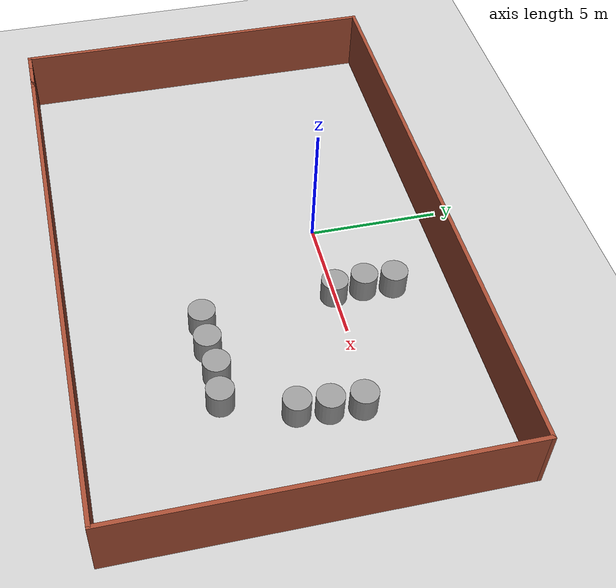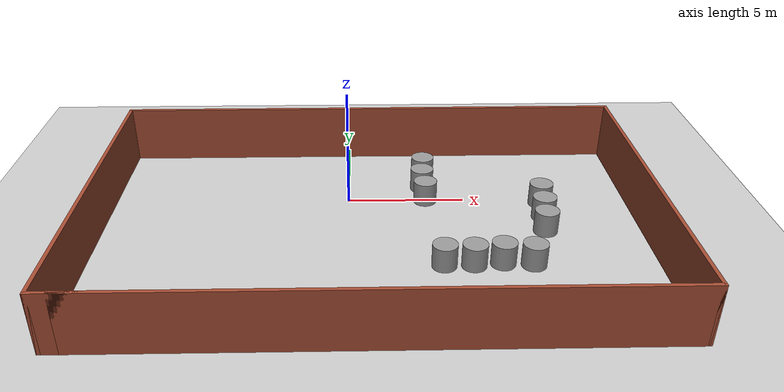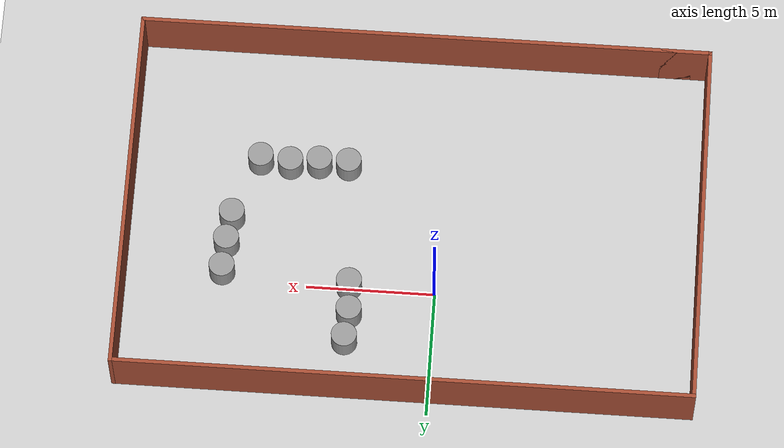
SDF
<sdf version="1.7">
 <world name="default">
  <light name="sun" type="directional">
   <pose>0 0 10 0 -0 0</pose>
   <diffuse>0.8 0.8 0.8 1</diffuse>
   <specular>0.2 0.2 0.2 1</specular>
   <attenuation>
    <range>1000</range>
    <constant>0.9</constant>
    <linear>0.01</linear>
    <quadratic>0.001</quadratic>
   </attenuation>
   <direction>-0.5 0.1 -0.9</direction>
   <spot><inner_angle>0</inner_angle><outer_angle>0</outer_angle><falloff>0</falloff></spot>
  </light>
  <model name="ground_plane">
   <static>1</static>
   <link name="link">
    <collision name="collision">
     <geometry><plane><normal>0 0 1</normal><size>100 100</size></plane></geometry>
     <surface>
      <contact><collide_bitmask>65535</collide_bitmask></contact>
      <friction><ode><mu>100</mu><mu2>50</mu2></ode></friction>
     </surface>
    </collision>
    <visual name="visual">
     <cast_shadows>0</cast_shadows>
     <geometry><plane><normal>0 0 1</normal><size>100 100</size></plane></geometry>
     <material>
      <script><uri>file://media/materials/scripts/gazebo.material</uri><name>Gazebo/Grey</name></script>
     </material>
    </visual>
   </link>
  </model>
  <gravity>0 0 -9.8</gravity>
  <magnetic_field>6e-06 2.3e-05 -4.2e-05</magnetic_field>
  <atmosphere type="adiabatic"/>
  <physics type="ode">
   <max_step_size>0.001</max_step_size>
   <real_time_factor>1</real_time_factor>
   <real_time_update_rate>1000</real_time_update_rate>
  </physics>
  <scene><ambient>0.4 0.4 0.4 1</ambient><background>0.7 0.7 0.7 1</background><shadows>1</shadows></scene>
  <spherical_coordinates>
   <surface_model>EARTH_WGS84</surface_model>
   <latitude_deg>0</latitude_deg>
   <longitude_deg>0</longitude_deg>
   <elevation>0</elevation>
   <heading_deg>0</heading_deg>
  </spherical_coordinates>
  <model name="Untitled">
   <pose>0.9792 -2.75676 0 0 -0 0</pose>
   <link name="Wall_2">
    <collision name="Wall_2_Collision">
     <geometry><box><size>21.75 0.15 2.5</size></box></geometry>
     <pose>0 0 1.25 0 -0 0</pose>
    </collision>
    <visual name="Wall_2_Visual">
     <pose>0 0 1.25 0 -0 0</pose>
     <geometry><box><size>21.75 0.15 2.5</size></box></geometry>
     <material>
      <script><uri>file://media/materials/scripts/gazebo.material</uri><name>Gazebo/Bricks</name></script>
      <ambient>0.447059 0.623529 0.811765 1</ambient>
     </material>
     <meta><layer>0</layer></meta>
    </visual>
    <pose>0.375 -7.175 0 0 -0 0</pose>
   </link>
   <link name="Wall_3">
    <collision name="Wall_3_Collision">
     <geometry><box><size>14.5 0.15 2.5</size></box></geometry>
     <pose>0 0 1.25 0 -0 0</pose>
    </collision>
    <visual name="Wall_3_Visual">
     <pose>0 0 1.25 0 -0 0</pose>
     <geometry><box><size>14.5 0.15 2.5</size></box></geometry>
     <material>
      <script><uri>file://media/materials/scripts/gazebo.material</uri><name>Gazebo/Bricks</name></script>
      <ambient>0.447059 0.623529 0.811765 1</ambient>
     </material>
     <meta><layer>0</layer></meta>
    </visual>
    <pose>11.175 0 0 0 -0 1.5708</pose>
   </link>
   <link name="Wall_4">
    <collision name="Wall_4_Collision">
     <geometry><box><size>22.5 0.15 2.5</size></box></geometry>
     <pose>0 0 1.25 0 -0 0</pose>
    </collision>
    <visual name="Wall_4_Visual">
     <pose>0 0 1.25 0 -0 0</pose>
     <geometry><box><size>22.5 0.15 2.5</size></box></geometry>
     <material>
      <script><uri>file://media/materials/scripts/gazebo.material</uri><name>Gazebo/Bricks</name></script>
      <ambient>0.447059 0.623529 0.811765 1</ambient>
     </material>
     <meta><layer>0</layer></meta>
    </visual>
    <pose>-0 7.175 0 0 -0 3.14159</pose>
   </link>
   <link name="Wall_5">
    <collision name="Wall_5_Collision">
     <geometry><box><size>14.5 0.15 2.5</size></box></geometry>
     <pose>0 0 1.25 0 -0 0</pose>
    </collision>
    <visual name="Wall_5_Visual">
     <pose>0 0 1.25 0 -0 0</pose>
     <geometry><box><size>14.5 0.15 2.5</size></box></geometry>
     <material>
      <script><uri>file://media/materials/scripts/gazebo.material</uri><name>Gazebo/Bricks</name></script>
      <ambient>0.447059 0.623529 0.811765 1</ambient>
     </material>
     <meta><layer>0</layer></meta>
    </visual>
    <pose>-11.175 0 0 0 -0 -1.5708</pose>
   </link>
   <link name="Wall_6">
    <collision name="Wall_6_Collision">
     <geometry><box><size>2 0.15 2.5</size></box></geometry>
     <pose>0 0 1.25 0 -0 0</pose>
    </collision>
    <visual name="Wall_6_Visual">
     <pose>0 0 1.25 0 -0 0</pose>
     <geometry><box><size>2 0.15 2.5</size></box></geometry>
     <material>
      <script><uri>file://media/materials/scripts/gazebo.material</uri><name>Gazebo/Bricks</name></script>
      <ambient>0.447059 0.623529 0.811765 1</ambient>
     </material>
     <meta><layer>0</layer></meta>
    </visual>
    <pose>-10.25 -7.175 0 0 -0 0</pose>
   </link>
   <static>1</static>
  </model>
  <model name="unit_cylinder">
   <link name="link">
    <inertial>
     <mass>1</mass>
     <inertia><ixx>0.145833</ixx><ixy>0</ixy><ixz>0</ixz><iyy>0.145833</iyy><iyz>0</iyz><izz>0.125</izz></inertia>
    </inertial>
    <visual name="visual">
     <geometry><cylinder><radius>0.5</radius><length>1</length></cylinder></geometry>
     <material>
      <script><name>Gazebo/Grey</name><uri>file://media/materials/scripts/gazebo.material</uri></script>
      <shader type="pixel"/>
     </material>
    </visual>
    <collision name="collision">
     <geometry><cylinder><radius>0.5</radius><length>1</length></cylinder></geometry>
     <surface>
      <friction>
       <ode><mu>1</mu><mu2>1</mu2><fdir1>0 0 0</fdir1><slip1>0</slip1><slip2>0</slip2></ode>
       <torsional>
        <coefficient>1</coefficient>
        <patch_radius>0</patch_radius>
        <surface_radius>0</surface_radius>
        <use_patch_radius>1</use_patch_radius>
        <ode><slip>0</slip></ode>
       </torsional>
      </friction>
      <bounce><restitution_coefficient>0</restitution_coefficient><threshold>1e+06</threshold></bounce>
      <contact>
       <collide_without_contact>0</collide_without_contact>
       <collide_without_contact_bitmask>1</collide_without_contact_bitmask>
       <collide_bitmask>1</collide_bitmask>
       <ode>
        <soft_cfm>0</soft_cfm>
        <soft_erp>0.2</soft_erp>
        <kp>1e+13</kp>
        <kd>1</kd>
        <max_vel>0.01</max_vel>
        <min_depth>0</min_depth>
       </ode>
       <bullet>
        <split_impulse>1</split_impulse>
        <split_impulse_penetration_threshold>-0.01</split_impulse_penetration_threshold>
        <soft_cfm>0</soft_cfm>
        <soft_erp>0.2</soft_erp>
        <kp>1e+13</kp>
        <kd>1</kd>
       </bullet>
      </contact>
     </surface>
    </collision>
   </link>
   <static>1</static>
   <pose>3.36949 2.22415 0.499993 -3e-06 -4e-06 -0</pose>
  </model>
  <model name="unit_cylinder_clone">
   <link name="link">
    <inertial>
     <mass>1</mass>
     <inertia><ixx>0.145833</ixx><ixy>0</ixy><ixz>0</ixz><iyy>0.145833</iyy><iyz>0</iyz><izz>0.125</izz></inertia>
    </inertial>
    <visual name="visual">
     <geometry><cylinder><radius>0.5</radius><length>1</length></cylinder></geometry>
     <material>
      <script><name>Gazebo/Grey</name><uri>file://media/materials/scripts/gazebo.material</uri></script>
      <shader type="pixel"/>
     </material>
    </visual>
    <collision name="collision">
     <geometry><cylinder><radius>0.5</radius><length>1</length></cylinder></geometry>
     <surface>
      <friction>
       <ode><mu>1</mu><mu2>1</mu2><fdir1>0 0 0</fdir1><slip1>0</slip1><slip2>0</slip2></ode>
       <torsional>
        <coefficient>1</coefficient>
        <patch_radius>0</patch_radius>
        <surface_radius>0</surface_radius>
        <use_patch_radius>1</use_patch_radius>
        <ode><slip>0</slip></ode>
       </torsional>
      </friction>
      <bounce><restitution_coefficient>0</restitution_coefficient><threshold>1e+06</threshold></bounce>
      <contact>
       <collide_without_contact>0</collide_without_contact>
       <collide_without_contact_bitmask>1</collide_without_contact_bitmask>
       <collide_bitmask>1</collide_bitmask>
       <ode>
        <soft_cfm>0</soft_cfm>
        <soft_erp>0.2</soft_erp>
        <kp>1e+13</kp>
        <kd>1</kd>
        <max_vel>0.01</max_vel>
        <min_depth>0</min_depth>
       </ode>
       <bullet>
        <split_impulse>1</split_impulse>
        <split_impulse_penetration_threshold>-0.01</split_impulse_penetration_threshold>
        <soft_cfm>0</soft_cfm>
        <soft_erp>0.2</soft_erp>
        <kp>1e+13</kp>
        <kd>1</kd>
       </bullet>
      </contact>
     </surface>
    </collision>
   </link>
   <static>1</static>
   <pose>3.26753 1.09729 0.499993 -3e-06 -4e-06 -0</pose>
  </model>
  <model name="unit_cylinder_clone_0">
   <link name="link">
    <inertial>
     <mass>1</mass>
     <inertia><ixx>0.145833</ixx><ixy>0</ixy><ixz>0</ixz><iyy>0.145833</iyy><iyz>0</iyz><izz>0.125</izz></inertia>
    </inertial>
    <visual name="visual">
     <geometry><cylinder><radius>0.5</radius><length>1</length></cylinder></geometry>
     <material>
      <script><name>Gazebo/Grey</name><uri>file://media/materials/scripts/gazebo.material</uri></script>
      <shader type="pixel"/>
     </material>
    </visual>
    <collision name="collision">
     <geometry><cylinder><radius>0.5</radius><length>1</length></cylinder></geometry>
     <surface>
      <friction>
       <ode><mu>1</mu><mu2>1</mu2><fdir1>0 0 0</fdir1><slip1>0</slip1><slip2>0</slip2></ode>
       <torsional>
        <coefficient>1</coefficient>
        <patch_radius>0</patch_radius>
        <surface_radius>0</surface_radius>
        <use_patch_radius>1</use_patch_radius>
        <ode><slip>0</slip></ode>
       </torsional>
      </friction>
      <bounce><restitution_coefficient>0</restitution_coefficient><threshold>1e+06</threshold></bounce>
      <contact>
       <collide_without_contact>0</collide_without_contact>
       <collide_without_contact_bitmask>1</collide_without_contact_bitmask>
       <collide_bitmask>1</collide_bitmask>
       <ode>
        <soft_cfm>0</soft_cfm>
        <soft_erp>0.2</soft_erp>
        <kp>1e+13</kp>
        <kd>1</kd>
        <max_vel>0.01</max_vel>
        <min_depth>0</min_depth>
       </ode>
       <bullet>
        <split_impulse>1</split_impulse>
        <split_impulse_penetration_threshold>-0.01</split_impulse_penetration_threshold>
        <soft_cfm>0</soft_cfm>
        <soft_erp>0.2</soft_erp>
        <kp>1e+13</kp>
        <kd>1</kd>
       </bullet>
      </contact>
     </surface>
    </collision>
   </link>
   <static>1</static>
   <pose>3.33616 -0.049378 0.499993 -3e-06 -4e-06 -0</pose>
  </model>
  <model name="unit_cylinder_clone_1">
   <link name="link">
    <inertial>
     <mass>1</mass>
     <inertia><ixx>0.145833</ixx><ixy>0</ixy><ixz>0</ixz><iyy>0.145833</iyy><iyz>0</iyz><izz>0.125</izz></inertia>
    </inertial>
    <visual name="visual">
     <geometry><cylinder><radius>0.5</radius><length>1</length></cylinder></geometry>
     <material>
      <script><name>Gazebo/Grey</name><uri>file://media/materials/scripts/gazebo.material</uri></script>
      <shader type="pixel"/>
     </material>
    </visual>
    <collision name="collision">
     <geometry><cylinder><radius>0.5</radius><length>1</length></cylinder></geometry>
     <surface>
      <friction>
       <ode><mu>1</mu><mu2>1</mu2><fdir1>0 0 0</fdir1><slip1>0</slip1><slip2>0</slip2></ode>
       <torsional>
        <coefficient>1</coefficient>
        <patch_radius>0</patch_radius>
        <surface_radius>0</surface_radius>
        <use_patch_radius>1</use_patch_radius>
        <ode><slip>0</slip></ode>
       </torsional>
      </friction>
      <bounce><restitution_coefficient>0</restitution_coefficient><threshold>1e+06</threshold></bounce>
      <contact>
       <collide_without_contact>0</collide_without_contact>
       <collide_without_contact_bitmask>1</collide_without_contact_bitmask>
       <collide_bitmask>1</collide_bitmask>
       <ode>
        <soft_cfm>0</soft_cfm>
        <soft_erp>0.2</soft_erp>
        <kp>1e+13</kp>
        <kd>1</kd>
        <max_vel>0.01</max_vel>
        <min_depth>0</min_depth>
       </ode>
       <bullet>
        <split_impulse>1</split_impulse>
        <split_impulse_penetration_threshold>-0.01</split_impulse_penetration_threshold>
        <soft_cfm>0</soft_cfm>
        <soft_erp>0.2</soft_erp>
        <kp>1e+13</kp>
        <kd>1</kd>
       </bullet>
      </contact>
     </surface>
    </collision>
   </link>
   <static>1</static>
   <pose>6 -5 0.499993 -3e-06 -4e-06 -0</pose>
  </model>
  <model name="unit_cylinder_clone_2">
   <link name="link">
    <inertial>
     <mass>1</mass>
     <inertia><ixx>0.145833</ixx><ixy>0</ixy><ixz>0</ixz><iyy>0.145833</iyy><iyz>0</iyz><izz>0.125</izz></inertia>
    </inertial>
    <visual name="visual">
     <geometry><cylinder><radius>0.5</radius><length>1</length></cylinder></geometry>
     <material>
      <script><name>Gazebo/Grey</name><uri>file://media/materials/scripts/gazebo.material</uri></script>
      <shader type="pixel"/>
     </material>
    </visual>
    <collision name="collision">
     <geometry><cylinder><radius>0.5</radius><length>1</length></cylinder></geometry>
     <surface>
      <friction>
       <ode><mu>1</mu><mu2>1</mu2><fdir1>0 0 0</fdir1><slip1>0</slip1><slip2>0</slip2></ode>
       <torsional>
        <coefficient>1</coefficient>
        <patch_radius>0</patch_radius>
        <surface_radius>0</surface_radius>
        <use_patch_radius>1</use_patch_radius>
        <ode><slip>0</slip></ode>
       </torsional>
      </friction>
      <bounce><restitution_coefficient>0</restitution_coefficient><threshold>1e+06</threshold></bounce>
      <contact>
       <collide_without_contact>0</collide_without_contact>
       <collide_without_contact_bitmask>1</collide_without_contact_bitmask>
       <collide_bitmask>1</collide_bitmask>
       <ode>
        <soft_cfm>0</soft_cfm>
        <soft_erp>0.2</soft_erp>
        <kp>1e+13</kp>
        <kd>1</kd>
        <max_vel>0.01</max_vel>
        <min_depth>0</min_depth>
       </ode>
       <bullet>
        <split_impulse>1</split_impulse>
        <split_impulse_penetration_threshold>-0.01</split_impulse_penetration_threshold>
        <soft_cfm>0</soft_cfm>
        <soft_erp>0.2</soft_erp>
        <kp>1e+13</kp>
        <kd>1</kd>
       </bullet>
      </contact>
     </surface>
    </collision>
   </link>
   <static>1</static>
   <pose>4.8636 -5.1022 0.499993 -3e-06 -4e-06 -0</pose>
  </model>
  <model name="unit_cylinder_clone_3">
   <link name="link">
    <inertial>
     <mass>1</mass>
     <inertia><ixx>0.145833</ixx><ixy>0</ixy><ixz>0</ixz><iyy>0.145833</iyy><iyz>0</iyz><izz>0.125</izz></inertia>
    </inertial>
    <visual name="visual">
     <geometry><cylinder><radius>0.5</radius><length>1</length></cylinder></geometry>
     <material>
      <script><name>Gazebo/Grey</name><uri>file://media/materials/scripts/gazebo.material</uri></script>
      <shader type="pixel"/>
     </material>
    </visual>
    <collision name="collision">
     <geometry><cylinder><radius>0.5</radius><length>1</length></cylinder></geometry>
     <surface>
      <friction>
       <ode><mu>1</mu><mu2>1</mu2><fdir1>0 0 0</fdir1><slip1>0</slip1><slip2>0</slip2></ode>
       <torsional>
        <coefficient>1</coefficient>
        <patch_radius>0</patch_radius>
        <surface_radius>0</surface_radius>
        <use_patch_radius>1</use_patch_radius>
        <ode><slip>0</slip></ode>
       </torsional>
      </friction>
      <bounce><restitution_coefficient>0</restitution_coefficient><threshold>1e+06</threshold></bounce>
      <contact>
       <collide_without_contact>0</collide_without_contact>
       <collide_without_contact_bitmask>1</collide_without_contact_bitmask>
       <collide_bitmask>1</collide_bitmask>
       <ode>
        <soft_cfm>0</soft_cfm>
        <soft_erp>0.2</soft_erp>
        <kp>1e+13</kp>
        <kd>1</kd>
        <max_vel>0.01</max_vel>
        <min_depth>0</min_depth>
       </ode>
       <bullet>
        <split_impulse>1</split_impulse>
        <split_impulse_penetration_threshold>-0.01</split_impulse_penetration_threshold>
        <soft_cfm>0</soft_cfm>
        <soft_erp>0.2</soft_erp>
        <kp>1e+13</kp>
        <kd>1</kd>
       </bullet>
      </contact>
     </surface>
    </collision>
   </link>
   <static>1</static>
   <pose>3.70946 -5.09233 0.499993 -3e-06 -4e-06 -0</pose>
  </model>
  <model name="unit_cylinder_clone_4">
   <link name="link">
    <inertial>
     <mass>1</mass>
     <inertia><ixx>0.145833</ixx><ixy>0</ixy><ixz>0</ixz><iyy>0.145833</iyy><iyz>0</iyz><izz>0.125</izz></inertia>
    </inertial>
    <visual name="visual">
     <geometry><cylinder><radius>0.5</radius><length>1</length></cylinder></geometry>
     <material>
      <script><name>Gazebo/Grey</name><uri>file://media/materials/scripts/gazebo.material</uri></script>
      <shader type="pixel"/>
     </material>
    </visual>
    <collision name="collision">
     <geometry><cylinder><radius>0.5</radius><length>1</length></cylinder></geometry>
     <surface>
      <friction>
       <ode><mu>1</mu><mu2>1</mu2><fdir1>0 0 0</fdir1><slip1>0</slip1><slip2>0</slip2></ode>
       <torsional>
        <coefficient>1</coefficient>
        <patch_radius>0</patch_radius>
        <surface_radius>0</surface_radius>
        <use_patch_radius>1</use_patch_radius>
        <ode><slip>0</slip></ode>
       </torsional>
      </friction>
      <bounce><restitution_coefficient>0</restitution_coefficient><threshold>1e+06</threshold></bounce>
      <contact>
       <collide_without_contact>0</collide_without_contact>
       <collide_without_contact_bitmask>1</collide_without_contact_bitmask>
       <collide_bitmask>1</collide_bitmask>
       <ode>
        <soft_cfm>0</soft_cfm>
        <soft_erp>0.2</soft_erp>
        <kp>1e+13</kp>
        <kd>1</kd>
        <max_vel>0.01</max_vel>
        <min_depth>0</min_depth>
       </ode>
       <bullet>
        <split_impulse>1</split_impulse>
        <split_impulse_penetration_threshold>-0.01</split_impulse_penetration_threshold>
        <soft_cfm>0</soft_cfm>
        <soft_erp>0.2</soft_erp>
        <kp>1e+13</kp>
        <kd>1</kd>
       </bullet>
      </contact>
     </surface>
    </collision>
   </link>
   <static>1</static>
   <pose>7.17381 -5.10327 0.499993 -3e-06 -4e-06 -0</pose>
  </model>
  <model name="unit_cylinder_clone_5">
   <link name="link">
    <inertial>
     <mass>1</mass>
     <inertia><ixx>0.145833</ixx><ixy>0</ixy><ixz>0</ixz><iyy>0.145833</iyy><iyz>0</iyz><izz>0.125</izz></inertia>
    </inertial>
    <visual name="visual">
     <geometry><cylinder><radius>0.5</radius><length>1</length></cylinder></geometry>
     <material>
      <script><name>Gazebo/Grey</name><uri>file://media/materials/scripts/gazebo.material</uri></script>
      <shader type="pixel"/>
     </material>
    </visual>
    <collision name="collision">
     <geometry><cylinder><radius>0.5</radius><length>1</length></cylinder></geometry>
     <surface>
      <friction>
       <ode><mu>1</mu><mu2>1</mu2><fdir1>0 0 0</fdir1><slip1>0</slip1><slip2>0</slip2></ode>
       <torsional>
        <coefficient>1</coefficient>
        <patch_radius>0</patch_radius>
        <surface_radius>0</surface_radius>
        <use_patch_radius>1</use_patch_radius>
        <ode><slip>0</slip></ode>
       </torsional>
      </friction>
      <bounce><restitution_coefficient>0</restitution_coefficient><threshold>1e+06</threshold></bounce>
      <contact>
       <collide_without_contact>0</collide_without_contact>
       <collide_without_contact_bitmask>1</collide_without_contact_bitmask>
       <collide_bitmask>1</collide_bitmask>
       <ode>
        <soft_cfm>0</soft_cfm>
        <soft_erp>0.2</soft_erp>
        <kp>1e+13</kp>
        <kd>1</kd>
        <max_vel>0.01</max_vel>
        <min_depth>0</min_depth>
       </ode>
       <bullet>
        <split_impulse>1</split_impulse>
        <split_impulse_penetration_threshold>-0.01</split_impulse_penetration_threshold>
        <soft_cfm>0</soft_cfm>
        <soft_erp>0.2</soft_erp>
        <kp>1e+13</kp>
        <kd>1</kd>
       </bullet>
      </contact>
     </surface>
    </collision>
   </link>
   <static>1</static>
   <pose>8.32772 -0.367123 0.499993 -3e-06 -4e-06 -0</pose>
  </model>
  <model name="unit_cylinder_clone_6">
   <link name="link">
    <inertial>
     <mass>1</mass>
     <inertia><ixx>0.145833</ixx><ixy>0</ixy><ixz>0</ixz><iyy>0.145833</iyy><iyz>0</iyz><izz>0.125</izz></inertia>
    </inertial>
    <visual name="visual">
     <geometry><cylinder><radius>0.5</radius><length>1</length></cylinder></geometry>
     <material>
      <script><name>Gazebo/Grey</name><uri>file://media/materials/scripts/gazebo.material</uri></script>
      <shader type="pixel"/>
     </material>
    </visual>
    <collision name="collision">
     <geometry><cylinder><radius>0.5</radius><length>1</length></cylinder></geometry>
     <surface>
      <friction>
       <ode><mu>1</mu><mu2>1</mu2><fdir1>0 0 0</fdir1><slip1>0</slip1><slip2>0</slip2></ode>
       <torsional>
        <coefficient>1</coefficient>
        <patch_radius>0</patch_radius>
        <surface_radius>0</surface_radius>
        <use_patch_radius>1</use_patch_radius>
        <ode><slip>0</slip></ode>
       </torsional>
      </friction>
      <bounce><restitution_coefficient>0</restitution_coefficient><threshold>1e+06</threshold></bounce>
      <contact>
       <collide_without_contact>0</collide_without_contact>
       <collide_without_contact_bitmask>1</collide_without_contact_bitmask>
       <collide_bitmask>1</collide_bitmask>
       <ode>
        <soft_cfm>0</soft_cfm>
        <soft_erp>0.2</soft_erp>
        <kp>1e+13</kp>
        <kd>1</kd>
        <max_vel>0.01</max_vel>
        <min_depth>0</min_depth>
       </ode>
       <bullet>
        <split_impulse>1</split_impulse>
        <split_impulse_penetration_threshold>-0.01</split_impulse_penetration_threshold>
        <soft_cfm>0</soft_cfm>
        <soft_erp>0.2</soft_erp>
        <kp>1e+13</kp>
        <kd>1</kd>
       </bullet>
      </contact>
     </surface>
    </collision>
   </link>
   <static>1</static>
   <pose>8.24745 -1.53113 0.499993 -3e-06 -4e-06 -0</pose>
  </model>
  <model name="unit_cylinder_clone_7">
   <link name="link">
    <inertial>
     <mass>1</mass>
     <inertia><ixx>0.145833</ixx><ixy>0</ixy><ixz>0</ixz><iyy>0.145833</iyy><iyz>0</iyz><izz>0.125</izz></inertia>
    </inertial>
    <visual name="visual">
     <geometry><cylinder><radius>0.5</radius><length>1</length></cylinder></geometry>
     <material>
      <script><name>Gazebo/Grey</name><uri>file://media/materials/scripts/gazebo.material</uri></script>
      <shader type="pixel"/>
     </material>
    </visual>
    <collision name="collision">
     <geometry><cylinder><radius>0.5</radius><length>1</length></cylinder></geometry>
     <surface>
      <friction>
       <ode><mu>1</mu><mu2>1</mu2><fdir1>0 0 0</fdir1><slip1>0</slip1><slip2>0</slip2></ode>
       <torsional>
        <coefficient>1</coefficient>
        <patch_radius>0</patch_radius>
        <surface_radius>0</surface_radius>
        <use_patch_radius>1</use_patch_radius>
        <ode><slip>0</slip></ode>
       </torsional>
      </friction>
      <bounce><restitution_coefficient>0</restitution_coefficient><threshold>1e+06</threshold></bounce>
      <contact>
       <collide_without_contact>0</collide_without_contact>
       <collide_without_contact_bitmask>1</collide_without_contact_bitmask>
       <collide_bitmask>1</collide_bitmask>
       <ode>
        <soft_cfm>0</soft_cfm>
        <soft_erp>0.2</soft_erp>
        <kp>1e+13</kp>
        <kd>1</kd>
        <max_vel>0.01</max_vel>
        <min_depth>0</min_depth>
       </ode>
       <bullet>
        <split_impulse>1</split_impulse>
        <split_impulse_penetration_threshold>-0.01</split_impulse_penetration_threshold>
        <soft_cfm>0</soft_cfm>
        <soft_erp>0.2</soft_erp>
        <kp>1e+13</kp>
        <kd>1</kd>
       </bullet>
      </contact>
     </surface>
    </collision>
   </link>
   <static>1</static>
   <pose>8.1162 -2.658 0.499993 -3e-06 -4e-06 -0</pose>
  </model>
  <light name="user_point_light_0" type="point">
   <pose>-7.51543 1.88289 1 0 -0 0</pose>
   <diffuse>0.5 0.5 0.5 1</diffuse>
   <specular>0.1 0.1 0.1 1</specular>
   <attenuation>
    <range>20</range>
    <constant>0.5</constant>
    <linear>0.01</linear>
    <quadratic>0.001</quadratic>
   </attenuation>
   <cast_shadows>0</cast_shadows>
   <direction>0 0 -1</direction>
  </light>
  <light name="user_directional_light_0" type="directional">
   <pose>6.68058 -4.76537 1 0 -0 0</pose>
   <diffuse>0.5 0.5 0.5 1</diffuse>
   <specular>0.1 0.1 0.1 1</specular>
   <direction>0.1 0.1 -0.9</direction>
   <attenuation>
    <range>20</range>
    <constant>0.5</constant>
    <linear>0.01</linear>
    <quadratic>0.001</quadratic>
   </attenuation>
  </light>
 </world>
</sdf>
